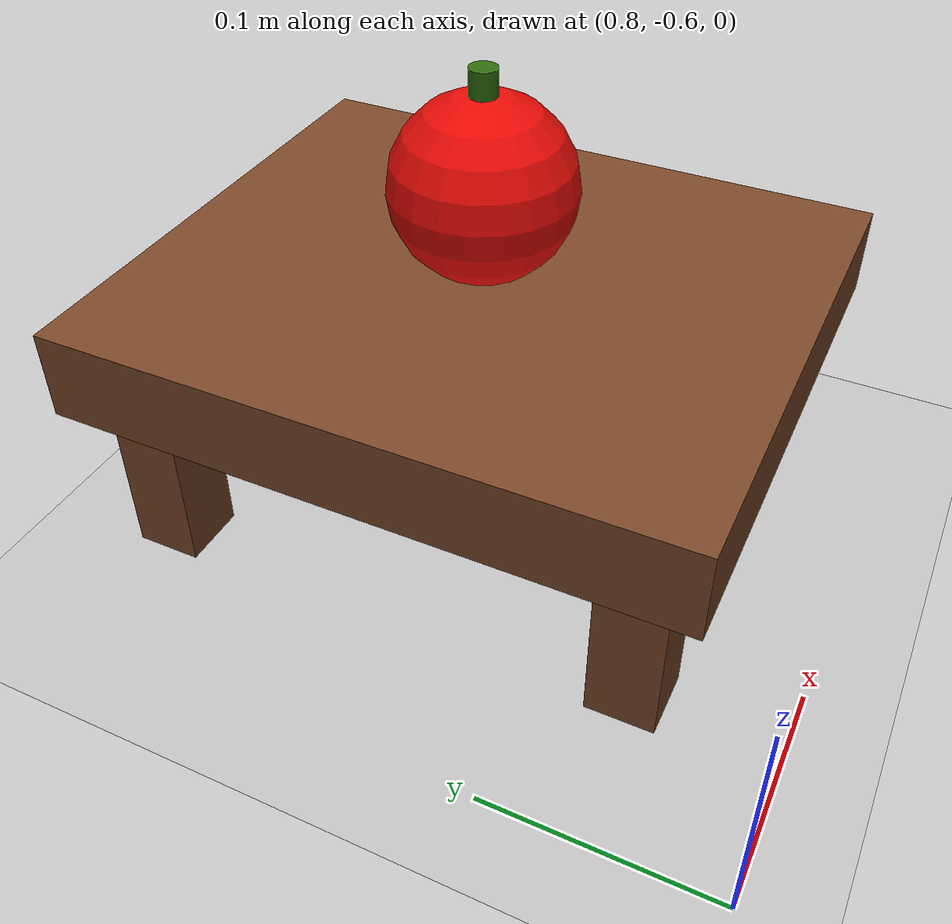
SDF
<?xml version="1.0"?>
<!-- A small pick demo: the robot must drive forward to reach the apple. -->
<sdf version="1.10">
  <world name="apple_pick">
    <physics name="1ms" type="ignored">
      <max_step_size>0.001</max_step_size>
      <real_time_factor>1.0</real_time_factor>
    </physics>

    <plugin filename="gz-sim-physics-system"           name="gz::sim::systems::Physics"/>
    <plugin filename="gz-sim-user-commands-system"     name="gz::sim::systems::UserCommands"/>
    <plugin filename="gz-sim-scene-broadcaster-system" name="gz::sim::systems::SceneBroadcaster"/>

    <light type="directional" name="sun">
      <cast_shadows>true</cast_shadows>
      <pose>0 0 10 0 0 0</pose>
      <diffuse>0.8 0.8 0.8 1</diffuse>
      <direction>-0.5 0.1 -0.9</direction>
    </light>

    <model name="ground_plane">
      <static>true</static>
      <link name="link">
        <collision name="collision">
          <geometry><plane><normal>0 0 1</normal><size>5 5</size></plane></geometry>
        </collision>
        <visual name="visual">
          <geometry><plane><normal>0 0 1</normal><size>5 5</size></plane></geometry>
          <material>
            <ambient>0.65 0.65 0.65 1</ambient>
            <diffuse>0.75 0.75 0.75 1</diffuse>
          </material>
        </visual>
      </link>
    </model>

    <!-- Place the apple at the gripper pose reached by the forward approach. -->
    <model name="side_table">
      <static>true</static>
      <pose>0.962 -0.426 0 0 0 0</pose>
      <link name="top">
        <collision name="collision">
          <pose>0 0 0.10 0 0 0</pose>
          <geometry><box><size>0.24 0.28 0.04</size></box></geometry>
        </collision>
        <visual name="visual">
          <pose>0 0 0.10 0 0 0</pose>
          <geometry><box><size>0.24 0.28 0.04</size></box></geometry>
          <material>
            <ambient>0.38 0.22 0.12 1</ambient>
            <diffuse>0.48 0.28 0.16 1</diffuse>
          </material>
        </visual>
        <collision name="front_left">
          <pose>-0.09 0.11 0.04 0 0 0</pose>
          <geometry><box><size>0.03 0.03 0.08</size></box></geometry>
        </collision>
        <collision name="front_right">
          <pose>0.09 0.11 0.04 0 0 0</pose>
          <geometry><box><size>0.03 0.03 0.08</size></box></geometry>
        </collision>
        <collision name="rear_left">
          <pose>-0.09 -0.11 0.04 0 0 0</pose>
          <geometry><box><size>0.03 0.03 0.08</size></box></geometry>
        </collision>
        <collision name="rear_right">
          <pose>0.09 -0.11 0.04 0 0 0</pose>
          <geometry><box><size>0.03 0.03 0.08</size></box></geometry>
        </collision>
        <visual name="front_left_visual">
          <pose>-0.09 0.11 0.04 0 0 0</pose>
          <geometry><box><size>0.03 0.03 0.08</size></box></geometry>
          <material>
            <ambient>0.38 0.22 0.12 1</ambient>
            <diffuse>0.48 0.28 0.16 1</diffuse>
          </material>
        </visual>
        <visual name="front_right_visual">
          <pose>0.09 0.11 0.04 0 0 0</pose>
          <geometry><box><size>0.03 0.03 0.08</size></box></geometry>
          <material>
            <ambient>0.38 0.22 0.12 1</ambient>
            <diffuse>0.48 0.28 0.16 1</diffuse>
          </material>
        </visual>
        <visual name="rear_left_visual">
          <pose>-0.09 -0.11 0.04 0 0 0</pose>
          <geometry><box><size>0.03 0.03 0.08</size></box></geometry>
          <material>
            <ambient>0.38 0.22 0.12 1</ambient>
            <diffuse>0.48 0.28 0.16 1</diffuse>
          </material>
        </visual>
        <visual name="rear_right_visual">
          <pose>0.09 -0.11 0.04 0 0 0</pose>
          <geometry><box><size>0.03 0.03 0.08</size></box></geometry>
          <material>
            <ambient>0.38 0.22 0.12 1</ambient>
            <diffuse>0.48 0.28 0.16 1</diffuse>
          </material>
        </visual>
      </link>
    </model>

    <!-- This is at the right gripper after the forward approach. -->
    <model name="apple">
      <pose>0.962 -0.4260 0.160 0 0 0</pose>
      <plugin filename="gz-sim-pose-publisher-system" name="gz::sim::systems::PosePublisher">
        <publish_model_pose>true</publish_model_pose>
        <publish_link_pose>true</publish_link_pose>
        <use_pose_vector_msg>true</use_pose_vector_msg>
      </plugin>
      <link name="link">
        <inertial>
          <mass>0.08</mass>
          <inertia>
            <ixx>0.0000512</ixx><iyy>0.0000512</iyy><izz>0.0000512</izz>
            <ixy>0</ixy><ixz>0</ixz><iyz>0</iyz>
          </inertia>
        </inertial>
        <collision name="fruit_collision">
          <geometry><sphere><radius>0.04</radius></sphere></geometry>
          <surface>
            <friction><ode><mu>1.0</mu><mu2>1.0</mu2></ode></friction>
          </surface>
        </collision>
        <visual name="fruit_visual">
          <geometry><sphere><radius>0.04</radius></sphere></geometry>
          <material>
            <ambient>0.65 0.03 0.02 1</ambient>
            <diffuse>0.90 0.04 0.02 1</diffuse>
          </material>
        </visual>
        <visual name="stem">
          <pose>0 0 0.038 0 0 0</pose>
          <geometry><cylinder><radius>0.006</radius><length>0.025</length></cylinder></geometry>
          <material>
            <ambient>0.12 0.28 0.04 1</ambient>
            <diffuse>0.18 0.42 0.05 1</diffuse>
          </material>
        </visual>
      </link>
    </model>
  </world>
</sdf>
